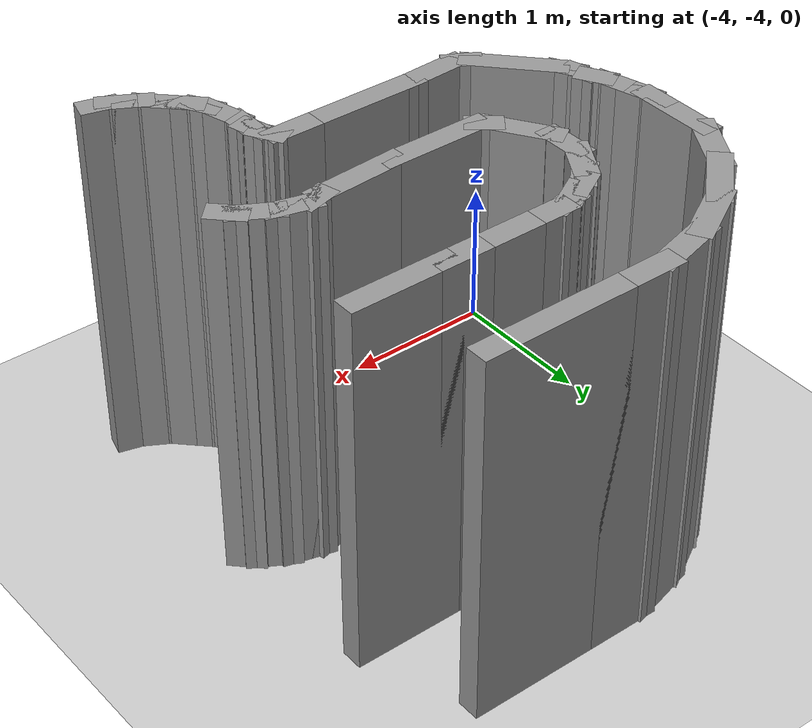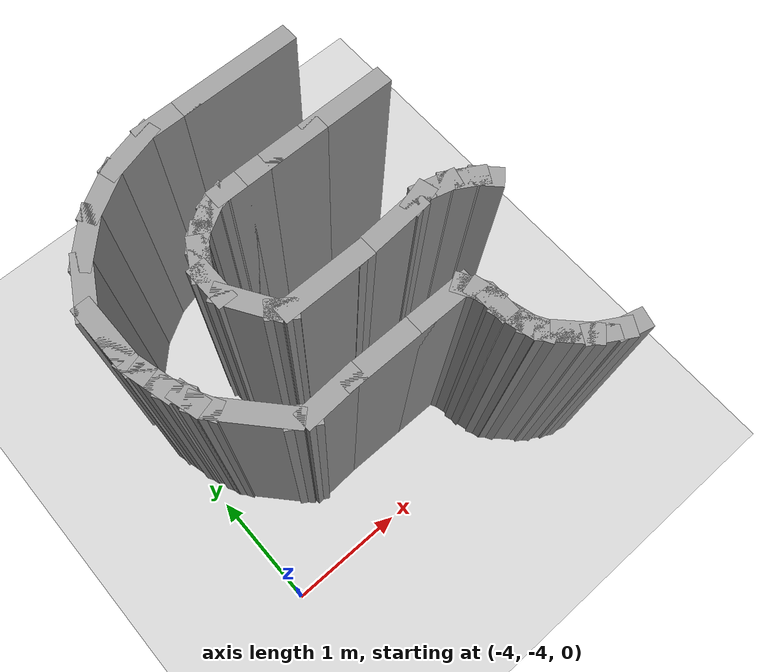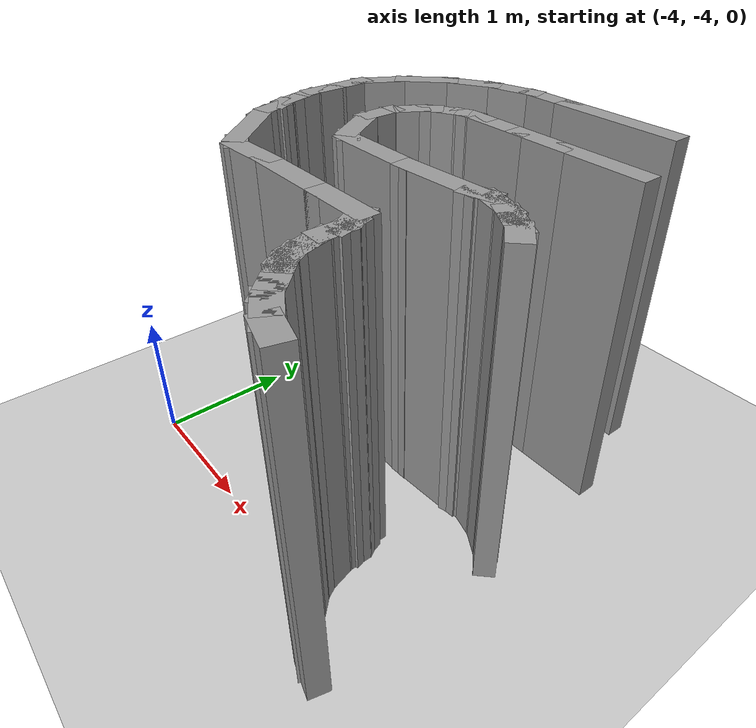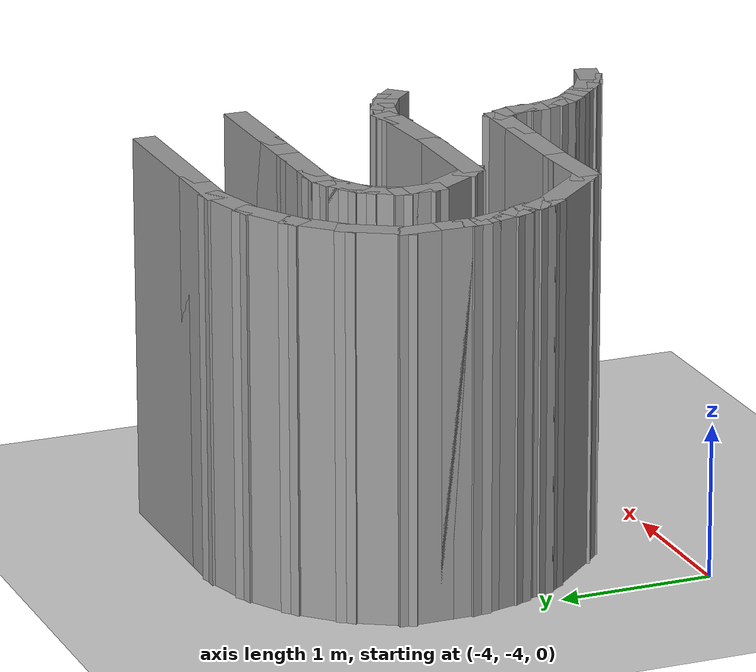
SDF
<sdf version="1.7">
 <world name="train_world">
  <include><uri>model://sun</uri></include>
  <include><uri>model://ground_plane</uri></include>
  <model name="test1">
   <pose>-1.53943 -2.21966 0 0 -0 0</pose>
   <link name="Wall_0">
    <collision name="Wall_0_Collision">
     <geometry><box><size>0.75 0.15 2.5</size></box></geometry>
     <pose>0 0 1.25 0 -0 0</pose>
    </collision>
    <visual name="Wall_0_Visual">
     <pose>0 0 1.25 0 -0 0</pose>
     <geometry><box><size>0.75 0.15 2.5</size></box></geometry>
     <material>
      <script><uri>file://media/materials/scripts/gazebo.material</uri><name>Gazebo/Grey</name></script>
      <ambient>1 1 1 1</ambient>
     </material>
     <meta><layer>0</layer></meta>
    </visual>
    <pose>-1.14057 -1.19033 0 0 -0 0</pose>
   </link>
   <link name="Wall_10">
    <collision name="Wall_10_Collision">
     <geometry><box><size>0.25 0.15 2.5</size></box></geometry>
     <pose>0 0 1.25 0 -0 0</pose>
    </collision>
    <visual name="Wall_10_Visual">
     <pose>0 0 1.25 0 -0 0</pose>
     <geometry><box><size>0.25 0.15 2.5</size></box></geometry>
     <material>
      <script><uri>file://media/materials/scripts/gazebo.material</uri><name>Gazebo/Grey</name></script>
      <ambient>1 1 1 1</ambient>
     </material>
     <meta><layer>0</layer></meta>
    </visual>
    <pose>-1.48816 0.23169 0 0 -0 0.523599</pose>
   </link>
   <link name="Wall_100">
    <collision name="Wall_100_Collision">
     <geometry><box><size>0.25 0.15 2.5</size></box></geometry>
     <pose>0 0 1.25 0 -0 0</pose>
    </collision>
    <visual name="Wall_100_Visual">
     <pose>0 0 1.25 0 -0 0</pose>
     <geometry><box><size>0.25 0.15 2.5</size></box></geometry>
     <material>
      <script><uri>file://media/materials/scripts/gazebo.material</uri><name>Gazebo/Grey</name></script>
      <ambient>1 1 1 1</ambient>
     </material>
     <meta><layer>0</layer></meta>
    </visual>
    <pose>0.120704 -2.07839 0 0 -0 -0.261799</pose>
   </link>
   <link name="Wall_11">
    <collision name="Wall_11_Collision">
     <geometry><box><size>0.25 0.15 2.5</size></box></geometry>
     <pose>0 0 1.25 0 -0 0</pose>
    </collision>
    <visual name="Wall_11_Visual">
     <pose>0 0 1.25 0 -0 0</pose>
     <geometry><box><size>0.25 0.15 2.5</size></box></geometry>
     <material>
      <script><uri>file://media/materials/scripts/gazebo.material</uri><name>Gazebo/Grey</name></script>
      <ambient>1 1 1 1</ambient>
     </material>
     <meta><layer>0</layer></meta>
    </visual>
    <pose>-1.40156 0.28169 0 0 -0 0.523599</pose>
   </link>
   <link name="Wall_12">
    <collision name="Wall_12_Collision">
     <geometry><box><size>0.25 0.15 2.5</size></box></geometry>
     <pose>0 0 1.25 0 -0 0</pose>
    </collision>
    <visual name="Wall_12_Visual">
     <pose>0 0 1.25 0 -0 0</pose>
     <geometry><box><size>0.25 0.15 2.5</size></box></geometry>
     <material>
      <script><uri>file://media/materials/scripts/gazebo.material</uri><name>Gazebo/Grey</name></script>
      <ambient>1 1 1 1</ambient>
     </material>
     <meta><layer>0</layer></meta>
    </visual>
    <pose>-1.30997 0.319631 0 0 -0 0.261799</pose>
   </link>
   <link name="Wall_126">
    <collision name="Wall_126_Collision">
     <geometry><box><size>0.5 0.15 2.5</size></box></geometry>
     <pose>0 0 1.25 0 -0 0</pose>
    </collision>
    <visual name="Wall_126_Visual">
     <pose>0 0 1.25 0 -0 0</pose>
     <geometry><box><size>0.5 0.15 2.5</size></box></geometry>
     <material>
      <script><uri>file://media/materials/scripts/gazebo.material</uri><name>Gazebo/Grey</name></script>
      <ambient>1 1 1 1</ambient>
     </material>
     <meta><layer>0</layer></meta>
    </visual>
    <pose>-2.4175 0.050557 0 0 -0 1.5708</pose>
   </link>
   <link name="Wall_127">
    <collision name="Wall_127_Collision">
     <geometry><box><size>0.5 0.15 2.5</size></box></geometry>
     <pose>0 0 1.25 0 -0 0</pose>
    </collision>
    <visual name="Wall_127_Visual">
     <pose>0 0 1.25 0 -0 0</pose>
     <geometry><box><size>0.5 0.15 2.5</size></box></geometry>
     <material>
      <script><uri>file://media/materials/scripts/gazebo.material</uri><name>Gazebo/Grey</name></script>
      <ambient>1 1 1 1</ambient>
     </material>
     <meta><layer>0</layer></meta>
    </visual>
    <pose>-2.33 0.377112 0 0 -0 1.0472</pose>
   </link>
   <link name="Wall_128">
    <collision name="Wall_128_Collision">
     <geometry><box><size>0.5 0.15 2.5</size></box></geometry>
     <pose>0 0 1.25 0 -0 0</pose>
    </collision>
    <visual name="Wall_128_Visual">
     <pose>0 0 1.25 0 -0 0</pose>
     <geometry><box><size>0.5 0.15 2.5</size></box></geometry>
     <material>
      <script><uri>file://media/materials/scripts/gazebo.material</uri><name>Gazebo/Grey</name></script>
      <ambient>1 1 1 1</ambient>
     </material>
     <meta><layer>0</layer></meta>
    </visual>
    <pose>-2.11876 0.65241 0 0 -0 0.785398</pose>
   </link>
   <link name="Wall_129">
    <collision name="Wall_129_Collision">
     <geometry><box><size>0.5 0.15 2.5</size></box></geometry>
     <pose>0 0 1.25 0 -0 0</pose>
    </collision>
    <visual name="Wall_129_Visual">
     <pose>0 0 1.25 0 -0 0</pose>
     <geometry><box><size>0.5 0.15 2.5</size></box></geometry>
     <material>
      <script><uri>file://media/materials/scripts/gazebo.material</uri><name>Gazebo/Grey</name></script>
      <ambient>1 1 1 1</ambient>
     </material>
     <meta><layer>0</layer></meta>
    </visual>
    <pose>-1.84346 0.863653 0 0 -0 0.523599</pose>
   </link>
   <link name="Wall_13">
    <collision name="Wall_13_Collision">
     <geometry><box><size>0.25 0.15 2.5</size></box></geometry>
     <pose>0 0 1.25 0 -0 0</pose>
    </collision>
    <visual name="Wall_13_Visual">
     <pose>0 0 1.25 0 -0 0</pose>
     <geometry><box><size>0.25 0.15 2.5</size></box></geometry>
     <material>
      <script><uri>file://media/materials/scripts/gazebo.material</uri><name>Gazebo/Grey</name></script>
      <ambient>1 1 1 1</ambient>
     </material>
     <meta><layer>0</layer></meta>
    </visual>
    <pose>-1.21167 0.332572 0 0 -0 0</pose>
   </link>
   <link name="Wall_130">
    <collision name="Wall_130_Collision">
     <geometry><box><size>0.5 0.15 2.5</size></box></geometry>
     <pose>0 0 1.25 0 -0 0</pose>
    </collision>
    <visual name="Wall_130_Visual">
     <pose>0 0 1.25 0 -0 0</pose>
     <geometry><box><size>0.5 0.15 2.5</size></box></geometry>
     <material>
      <script><uri>file://media/materials/scripts/gazebo.material</uri><name>Gazebo/Grey</name></script>
      <ambient>1 1 1 1</ambient>
     </material>
     <meta><layer>0</layer></meta>
    </visual>
    <pose>-1.52287 0.996447 0 0 -0 0.261799</pose>
   </link>
   <link name="Wall_131">
    <collision name="Wall_131_Collision">
     <geometry><box><size>0.5 0.15 2.5</size></box></geometry>
     <pose>0 0 1.25 0 -0 0</pose>
    </collision>
    <visual name="Wall_131_Visual">
     <pose>0 0 1.25 0 -0 0</pose>
     <geometry><box><size>0.5 0.15 2.5</size></box></geometry>
     <material>
      <script><uri>file://media/materials/scripts/gazebo.material</uri><name>Gazebo/Grey</name></script>
      <ambient>1 1 1 1</ambient>
     </material>
     <meta><layer>0</layer></meta>
    </visual>
    <pose>-1.17883 1.04174 0 0 -0 0</pose>
   </link>
   <link name="Wall_132">
    <collision name="Wall_132_Collision">
     <geometry><box><size>1 0.15 2.5</size></box></geometry>
     <pose>0 0 1.25 0 -0 0</pose>
    </collision>
    <visual name="Wall_132_Visual">
     <pose>0 0 1.25 0 -0 0</pose>
     <geometry><box><size>1 0.15 2.5</size></box></geometry>
     <material>
      <script><uri>file://media/materials/scripts/gazebo.material</uri><name>Gazebo/Grey</name></script>
      <ambient>1 1 1 1</ambient>
     </material>
     <meta><layer>0</layer></meta>
    </visual>
    <pose>-0.578833 1.04174 0 0 -0 0</pose>
   </link>
   <link name="Wall_14">
    <collision name="Wall_14_Collision">
     <geometry><box><size>0.5 0.15 2.5</size></box></geometry>
     <pose>0 0 1.25 0 -0 0</pose>
    </collision>
    <visual name="Wall_14_Visual">
     <pose>0 0 1.25 0 -0 0</pose>
     <geometry><box><size>0.5 0.15 2.5</size></box></geometry>
     <material>
      <script><uri>file://media/materials/scripts/gazebo.material</uri><name>Gazebo/Grey</name></script>
      <ambient>1 1 1 1</ambient>
     </material>
     <meta><layer>0</layer></meta>
    </visual>
    <pose>-0.986669 0.332572 0 0 -0 0</pose>
   </link>
   <link name="Wall_15">
    <collision name="Wall_15_Collision">
     <geometry><box><size>0.5 0.15 2.5</size></box></geometry>
     <pose>0 0 1.25 0 -0 0</pose>
    </collision>
    <visual name="Wall_15_Visual">
     <pose>0 0 1.25 0 -0 0</pose>
     <geometry><box><size>0.5 0.15 2.5</size></box></geometry>
     <material>
      <script><uri>file://media/materials/scripts/gazebo.material</uri><name>Gazebo/Grey</name></script>
      <ambient>1 1 1 1</ambient>
     </material>
     <meta><layer>0</layer></meta>
    </visual>
    <pose>-0.636669 0.332572 0 0 -0 0</pose>
   </link>
   <link name="Wall_16">
    <collision name="Wall_16_Collision">
     <geometry><box><size>0.73 0.15 2.5</size></box></geometry>
     <pose>0 0 1.25 0 -0 0</pose>
    </collision>
    <visual name="Wall_16_Visual">
     <pose>0 0 1.25 0 -0 0</pose>
     <geometry><box><size>0.73 0.15 2.5</size></box></geometry>
     <material>
      <script><uri>file://media/materials/scripts/gazebo.material</uri><name>Gazebo/Grey</name></script>
      <ambient>1 1 1 1</ambient>
     </material>
     <meta><layer>0</layer></meta>
    </visual>
    <pose>-0.171669 0.332572 0 0 -0 0</pose>
   </link>
   <link name="Wall_2">
    <collision name="Wall_2_Collision">
     <geometry><box><size>0.75 0.15 2.5</size></box></geometry>
     <pose>0 0 1.25 0 -0 0</pose>
    </collision>
    <visual name="Wall_2_Visual">
     <pose>0 0 1.25 0 -0 0</pose>
     <geometry><box><size>0.75 0.15 2.5</size></box></geometry>
     <material>
      <script><uri>file://media/materials/scripts/gazebo.material</uri><name>Gazebo/Grey</name></script>
      <ambient>1 1 1 1</ambient>
     </material>
     <meta><layer>0</layer></meta>
    </visual>
    <pose>-1.14057 -0.590335 0 0 -0 3.14159</pose>
   </link>
   <link name="Wall_3">
    <collision name="Wall_3_Collision">
     <geometry><box><size>0.233282 0.15 2.5</size></box></geometry>
     <pose>0 0 1.25 0 -0 0</pose>
    </collision>
    <visual name="Wall_3_Visual">
     <pose>0 0 1.25 0 -0 0</pose>
     <geometry><box><size>0.233282 0.15 2.5</size></box></geometry>
     <material>
      <script><uri>file://media/materials/scripts/gazebo.material</uri><name>Gazebo/Grey</name></script>
      <ambient>1 1 1 1</ambient>
     </material>
     <meta><layer>0</layer></meta>
    </visual>
    <pose>-1.47388 -0.565335 0 0 -0 2.49763</pose>
   </link>
   <link name="Wall_4">
    <collision name="Wall_4_Collision">
     <geometry><box><size>0.510416 0.15 2.5</size></box></geometry>
     <pose>0 0 1.25 0 -0 0</pose>
    </collision>
    <visual name="Wall_4_Visual">
     <pose>0 0 1.25 0 -0 0</pose>
     <geometry><box><size>0.510416 0.15 2.5</size></box></geometry>
     <material>
      <script><uri>file://media/materials/scripts/gazebo.material</uri><name>Gazebo/Grey</name></script>
      <ambient>1 1 1 1</ambient>
     </material>
     <meta><layer>0</layer></meta>
    </visual>
    <pose>-1.60468 -0.38878 0 0 -0 2.14247</pose>
   </link>
   <link name="Wall_45">
    <collision name="Wall_45_Collision">
     <geometry><box><size>0.25 0.15 2.5</size></box></geometry>
     <pose>0 0 1.25 0 -0 0</pose>
    </collision>
    <visual name="Wall_45_Visual">
     <pose>0 0 1.25 0 -0 0</pose>
     <geometry><box><size>0.25 0.15 2.5</size></box></geometry>
     <material>
      <script><uri>file://media/materials/scripts/gazebo.material</uri><name>Gazebo/Grey</name></script>
      <ambient>1 1 1 1</ambient>
     </material>
     <meta><layer>0</layer></meta>
    </visual>
    <pose>0.166593 -0.71885 0 0 -0 2.35619</pose>
   </link>
   <link name="Wall_46">
    <collision name="Wall_46_Collision">
     <geometry><box><size>0.25 0.15 2.5</size></box></geometry>
     <pose>0 0 1.25 0 -0 0</pose>
    </collision>
    <visual name="Wall_46_Visual">
     <pose>0 0 1.25 0 -0 0</pose>
     <geometry><box><size>0.25 0.15 2.5</size></box></geometry>
     <material>
      <script><uri>file://media/materials/scripts/gazebo.material</uri><name>Gazebo/Grey</name></script>
      <ambient>1 1 1 1</ambient>
     </material>
     <meta><layer>0</layer></meta>
    </visual>
    <pose>0.087937 -0.658495 0 0 -0 2.61799</pose>
   </link>
   <link name="Wall_47">
    <collision name="Wall_47_Collision">
     <geometry><box><size>0.25 0.15 2.5</size></box></geometry>
     <pose>0 0 1.25 0 -0 0</pose>
    </collision>
    <visual name="Wall_47_Visual">
     <pose>0 0 1.25 0 -0 0</pose>
     <geometry><box><size>0.25 0.15 2.5</size></box></geometry>
     <material>
      <script><uri>file://media/materials/scripts/gazebo.material</uri><name>Gazebo/Grey</name></script>
      <ambient>1 1 1 1</ambient>
     </material>
     <meta><layer>0</layer></meta>
    </visual>
    <pose>0.001334 -0.608495 0 0 -0 2.61799</pose>
   </link>
   <link name="Wall_48">
    <collision name="Wall_48_Collision">
     <geometry><box><size>0.25 0.15 2.5</size></box></geometry>
     <pose>0 0 1.25 0 -0 0</pose>
    </collision>
    <visual name="Wall_48_Visual">
     <pose>0 0 1.25 0 -0 0</pose>
     <geometry><box><size>0.25 0.15 2.5</size></box></geometry>
     <material>
      <script><uri>file://media/materials/scripts/gazebo.material</uri><name>Gazebo/Grey</name></script>
      <ambient>1 1 1 1</ambient>
     </material>
     <meta><layer>0</layer></meta>
    </visual>
    <pose>-0.090263 -0.570554 0 0 -0 2.87979</pose>
   </link>
   <link name="Wall_49">
    <collision name="Wall_49_Collision">
     <geometry><box><size>0.25 0.15 2.5</size></box></geometry>
     <pose>0 0 1.25 0 -0 0</pose>
    </collision>
    <visual name="Wall_49_Visual">
     <pose>0 0 1.25 0 -0 0</pose>
     <geometry><box><size>0.25 0.15 2.5</size></box></geometry>
     <material>
      <script><uri>file://media/materials/scripts/gazebo.material</uri><name>Gazebo/Grey</name></script>
      <ambient>1 1 1 1</ambient>
     </material>
     <meta><layer>0</layer></meta>
    </visual>
    <pose>-0.186856 -0.544672 0 0 -0 2.87979</pose>
   </link>
   <link name="Wall_5">
    <collision name="Wall_5_Collision">
     <geometry><box><size>0.25 0.15 2.5</size></box></geometry>
     <pose>0 0 1.25 0 -0 0</pose>
    </collision>
    <visual name="Wall_5_Visual">
     <pose>0 0 1.25 0 -0 0</pose>
     <geometry><box><size>0.25 0.15 2.5</size></box></geometry>
     <material>
      <script><uri>file://media/materials/scripts/gazebo.material</uri><name>Gazebo/Grey</name></script>
      <ambient>1 1 1 1</ambient>
     </material>
     <meta><layer>0</layer></meta>
    </visual>
    <pose>-1.70218 -0.187226 0 0 -0 1.5708</pose>
   </link>
   <link name="Wall_50">
    <collision name="Wall_50_Collision">
     <geometry><box><size>0.25 0.15 2.5</size></box></geometry>
     <pose>0 0 1.25 0 -0 0</pose>
    </collision>
    <visual name="Wall_50_Visual">
     <pose>0 0 1.25 0 -0 0</pose>
     <geometry><box><size>0.25 0.15 2.5</size></box></geometry>
     <material>
      <script><uri>file://media/materials/scripts/gazebo.material</uri><name>Gazebo/Grey</name></script>
      <ambient>1 1 1 1</ambient>
     </material>
     <meta><layer>0</layer></meta>
    </visual>
    <pose>-0.283449 -0.544672 0 0 -0 -2.87979</pose>
   </link>
   <link name="Wall_51">
    <collision name="Wall_51_Collision">
     <geometry><box><size>0.659881 0.15 2.5</size></box></geometry>
     <pose>0 0 1.25 0 -0 0</pose>
    </collision>
    <visual name="Wall_51_Visual">
     <pose>0 0 1.25 0 -0 0</pose>
     <geometry><box><size>0.659881 0.15 2.5</size></box></geometry>
     <material>
      <script><uri>file://media/materials/scripts/gazebo.material</uri><name>Gazebo/Grey</name></script>
      <ambient>1 1 1 1</ambient>
     </material>
     <meta><layer>0</layer></meta>
    </visual>
    <pose>-0.58616 -0.573974 0 0 -0 -3.07737</pose>
   </link>
   <link name="Wall_6">
    <collision name="Wall_6_Collision">
     <geometry><box><size>0.25 0.15 2.5</size></box></geometry>
     <pose>0 0 1.25 0 -0 0</pose>
    </collision>
    <visual name="Wall_6_Visual">
     <pose>0 0 1.25 0 -0 0</pose>
     <geometry><box><size>0.25 0.15 2.5</size></box></geometry>
     <material>
      <script><uri>file://media/materials/scripts/gazebo.material</uri><name>Gazebo/Grey</name></script>
      <ambient>1 1 1 1</ambient>
     </material>
     <meta><layer>0</layer></meta>
    </visual>
    <pose>-1.70218 -0.087226 0 0 -0 1.5708</pose>
   </link>
   <link name="Wall_61">
    <collision name="Wall_61_Collision">
     <geometry><box><size>0.23 0.15 2.5</size></box></geometry>
     <pose>0 0 1.25 0 -0 0</pose>
    </collision>
    <visual name="Wall_61_Visual">
     <pose>0 0 1.25 0 -0 0</pose>
     <geometry><box><size>0.23 0.15 2.5</size></box></geometry>
     <material>
      <script><uri>file://media/materials/scripts/gazebo.material</uri><name>Gazebo/Grey</name></script>
      <ambient>1 1 1 1</ambient>
     </material>
     <meta><layer>0</layer></meta>
    </visual>
    <pose>-2.4175 -0.084443 0 0 -0 -1.5708</pose>
   </link>
   <link name="Wall_62">
    <collision name="Wall_62_Collision">
     <geometry><box><size>0.25 0.15 2.5</size></box></geometry>
     <pose>0 0 1.25 0 -0 0</pose>
    </collision>
    <visual name="Wall_62_Visual">
     <pose>0 0 1.25 0 -0 0</pose>
     <geometry><box><size>0.25 0.15 2.5</size></box></geometry>
     <material>
      <script><uri>file://media/materials/scripts/gazebo.material</uri><name>Gazebo/Grey</name></script>
      <ambient>1 1 1 1</ambient>
     </material>
     <meta><layer>0</layer></meta>
    </visual>
    <pose>-2.4175 -0.174443 0 0 -0 -1.5708</pose>
   </link>
   <link name="Wall_63">
    <collision name="Wall_63_Collision">
     <geometry><box><size>0.25 0.15 2.5</size></box></geometry>
     <pose>0 0 1.25 0 -0 0</pose>
    </collision>
    <visual name="Wall_63_Visual">
     <pose>0 0 1.25 0 -0 0</pose>
     <geometry><box><size>0.25 0.15 2.5</size></box></geometry>
     <material>
      <script><uri>file://media/materials/scripts/gazebo.material</uri><name>Gazebo/Grey</name></script>
      <ambient>1 1 1 1</ambient>
     </material>
     <meta><layer>0</layer></meta>
    </visual>
    <pose>-2.40456 -0.272739 0 0 -0 -1.309</pose>
   </link>
   <link name="Wall_64">
    <collision name="Wall_64_Collision">
     <geometry><box><size>0.25 0.15 2.5</size></box></geometry>
     <pose>0 0 1.25 0 -0 0</pose>
    </collision>
    <visual name="Wall_64_Visual">
     <pose>0 0 1.25 0 -0 0</pose>
     <geometry><box><size>0.25 0.15 2.5</size></box></geometry>
     <material>
      <script><uri>file://media/materials/scripts/gazebo.material</uri><name>Gazebo/Grey</name></script>
      <ambient>1 1 1 1</ambient>
     </material>
     <meta><layer>0</layer></meta>
    </visual>
    <pose>-2.37868 -0.369332 0 0 -0 -1.309</pose>
   </link>
   <link name="Wall_65">
    <collision name="Wall_65_Collision">
     <geometry><box><size>0.25 0.15 2.5</size></box></geometry>
     <pose>0 0 1.25 0 -0 0</pose>
    </collision>
    <visual name="Wall_65_Visual">
     <pose>0 0 1.25 0 -0 0</pose>
     <geometry><box><size>0.25 0.15 2.5</size></box></geometry>
     <material>
      <script><uri>file://media/materials/scripts/gazebo.material</uri><name>Gazebo/Grey</name></script>
      <ambient>1 1 1 1</ambient>
     </material>
     <meta><layer>0</layer></meta>
    </visual>
    <pose>-2.3528 -0.465924 0 0 -0 -1.309</pose>
   </link>
   <link name="Wall_66">
    <collision name="Wall_66_Collision">
     <geometry><box><size>0.25 0.15 2.5</size></box></geometry>
     <pose>0 0 1.25 0 -0 0</pose>
    </collision>
    <visual name="Wall_66_Visual">
     <pose>0 0 1.25 0 -0 0</pose>
     <geometry><box><size>0.25 0.15 2.5</size></box></geometry>
     <material>
      <script><uri>file://media/materials/scripts/gazebo.material</uri><name>Gazebo/Grey</name></script>
      <ambient>1 1 1 1</ambient>
     </material>
     <meta><layer>0</layer></meta>
    </visual>
    <pose>-2.31486 -0.557522 0 0 -0 -1.0472</pose>
   </link>
   <link name="Wall_67">
    <collision name="Wall_67_Collision">
     <geometry><box><size>0.25 0.15 2.5</size></box></geometry>
     <pose>0 0 1.25 0 -0 0</pose>
    </collision>
    <visual name="Wall_67_Visual">
     <pose>0 0 1.25 0 -0 0</pose>
     <geometry><box><size>0.25 0.15 2.5</size></box></geometry>
     <material>
      <script><uri>file://media/materials/scripts/gazebo.material</uri><name>Gazebo/Grey</name></script>
      <ambient>1 1 1 1</ambient>
     </material>
     <meta><layer>0</layer></meta>
    </visual>
    <pose>-2.27692 -0.649119 0 0 -0 -1.309</pose>
   </link>
   <link name="Wall_68">
    <collision name="Wall_68_Collision">
     <geometry><box><size>0.25 0.15 2.5</size></box></geometry>
     <pose>0 0 1.25 0 -0 0</pose>
    </collision>
    <visual name="Wall_68_Visual">
     <pose>0 0 1.25 0 -0 0</pose>
     <geometry><box><size>0.25 0.15 2.5</size></box></geometry>
     <material>
      <script><uri>file://media/materials/scripts/gazebo.material</uri><name>Gazebo/Grey</name></script>
      <ambient>1 1 1 1</ambient>
     </material>
     <meta><layer>0</layer></meta>
    </visual>
    <pose>-2.23898 -0.740717 0 0 -0 -1.0472</pose>
   </link>
   <link name="Wall_7">
    <collision name="Wall_7_Collision">
     <geometry><box><size>0.25 0.15 2.5</size></box></geometry>
     <pose>0 0 1.25 0 -0 0</pose>
    </collision>
    <visual name="Wall_7_Visual">
     <pose>0 0 1.25 0 -0 0</pose>
     <geometry><box><size>0.25 0.15 2.5</size></box></geometry>
     <material>
      <script><uri>file://media/materials/scripts/gazebo.material</uri><name>Gazebo/Grey</name></script>
      <ambient>1 1 1 1</ambient>
     </material>
     <meta><layer>0</layer></meta>
    </visual>
    <pose>-1.67718 0.006075 0 0 -0 1.0472</pose>
   </link>
   <link name="Wall_76">
    <collision name="Wall_76_Collision">
     <geometry><box><size>0.490641 0.15 2.5</size></box></geometry>
     <pose>0 0 1.25 0 -0 0</pose>
    </collision>
    <visual name="Wall_76_Visual">
     <pose>0 0 1.25 0 -0 0</pose>
     <geometry><box><size>0.490641 0.15 2.5</size></box></geometry>
     <material>
      <script><uri>file://media/materials/scripts/gazebo.material</uri><name>Gazebo/Grey</name></script>
      <ambient>1 1 1 1</ambient>
     </material>
     <meta><layer>0</layer></meta>
    </visual>
    <pose>-1.61065 -1.19942 0 0 -0 0.053395</pose>
   </link>
   <link name="Wall_8">
    <collision name="Wall_8_Collision">
     <geometry><box><size>0.25 0.15 2.5</size></box></geometry>
     <pose>0 0 1.25 0 -0 0</pose>
    </collision>
    <visual name="Wall_8_Visual">
     <pose>0 0 1.25 0 -0 0</pose>
     <geometry><box><size>0.25 0.15 2.5</size></box></geometry>
     <material>
      <script><uri>file://media/materials/scripts/gazebo.material</uri><name>Gazebo/Grey</name></script>
      <ambient>1 1 1 1</ambient>
     </material>
     <meta><layer>0</layer></meta>
    </visual>
    <pose>-1.62718 0.092678 0 0 -0 1.0472</pose>
   </link>
   <link name="Wall_80">
    <collision name="Wall_80_Collision">
     <geometry><box><size>0.25 0.15 2.5</size></box></geometry>
     <pose>0 0 1.25 0 -0 0</pose>
    </collision>
    <visual name="Wall_80_Visual">
     <pose>0 0 1.25 0 -0 0</pose>
     <geometry><box><size>0.25 0.15 2.5</size></box></geometry>
     <material>
      <script><uri>file://media/materials/scripts/gazebo.material</uri><name>Gazebo/Grey</name></script>
      <ambient>1 1 1 1</ambient>
     </material>
     <meta><layer>0</layer></meta>
    </visual>
    <pose>-1.82403 -1.18352 0 0 -0 2.61799</pose>
   </link>
   <link name="Wall_81">
    <collision name="Wall_81_Collision">
     <geometry><box><size>0.660302 0.15 2.5</size></box></geometry>
     <pose>0 0 1.25 0 -0 0</pose>
    </collision>
    <visual name="Wall_81_Visual">
     <pose>0 0 1.25 0 -0 0</pose>
     <geometry><box><size>0.660302 0.15 2.5</size></box></geometry>
     <material>
      <script><uri>file://media/materials/scripts/gazebo.material</uri><name>Gazebo/Grey</name></script>
      <ambient>1 1 1 1</ambient>
     </material>
     <meta><layer>0</layer></meta>
    </visual>
    <pose>-2.04065 -0.971267 0 0 -0 2.31759</pose>
   </link>
   <link name="Wall_88">
    <collision name="Wall_88_Collision">
     <geometry><box><size>0.5 0.15 2.5</size></box></geometry>
     <pose>0 0 1.25 0 -0 0</pose>
    </collision>
    <visual name="Wall_88_Visual">
     <pose>0 0 1.25 0 -0 0</pose>
     <geometry><box><size>0.5 0.15 2.5</size></box></geometry>
     <material>
      <script><uri>file://media/materials/scripts/gazebo.material</uri><name>Gazebo/Grey</name></script>
      <ambient>1 1 1 1</ambient>
     </material>
     <meta><layer>0</layer></meta>
    </visual>
    <pose>-0.665575 -1.19033 0 0 -0 0</pose>
   </link>
   <link name="Wall_89">
    <collision name="Wall_89_Collision">
     <geometry><box><size>0.25 0.15 2.5</size></box></geometry>
     <pose>0 0 1.25 0 -0 0</pose>
    </collision>
    <visual name="Wall_89_Visual">
     <pose>0 0 1.25 0 -0 0</pose>
     <geometry><box><size>0.25 0.15 2.5</size></box></geometry>
     <material>
      <script><uri>file://media/materials/scripts/gazebo.material</uri><name>Gazebo/Grey</name></script>
      <ambient>1 1 1 1</ambient>
     </material>
     <meta><layer>0</layer></meta>
    </visual>
    <pose>-0.465575 -1.23364 0 0 -0 -1.0472</pose>
   </link>
   <link name="Wall_9">
    <collision name="Wall_9_Collision">
     <geometry><box><size>0.25 0.15 2.5</size></box></geometry>
     <pose>0 0 1.25 0 -0 0</pose>
    </collision>
    <visual name="Wall_9_Visual">
     <pose>0 0 1.25 0 -0 0</pose>
     <geometry><box><size>0.25 0.15 2.5</size></box></geometry>
     <material>
      <script><uri>file://media/materials/scripts/gazebo.material</uri><name>Gazebo/Grey</name></script>
      <ambient>1 1 1 1</ambient>
     </material>
     <meta><layer>0</layer></meta>
    </visual>
    <pose>-1.56682 0.171335 0 0 -0 0.785398</pose>
   </link>
   <link name="Wall_90">
    <collision name="Wall_90_Collision">
     <geometry><box><size>0.25 0.15 2.5</size></box></geometry>
     <pose>0 0 1.25 0 -0 0</pose>
    </collision>
    <visual name="Wall_90_Visual">
     <pose>0 0 1.25 0 -0 0</pose>
     <geometry><box><size>0.25 0.15 2.5</size></box></geometry>
     <material>
      <script><uri>file://media/materials/scripts/gazebo.material</uri><name>Gazebo/Grey</name></script>
      <ambient>1 1 1 1</ambient>
     </material>
     <meta><layer>0</layer></meta>
    </visual>
    <pose>-0.427634 -1.32523 0 0 -0 -1.309</pose>
   </link>
   <link name="Wall_91">
    <collision name="Wall_91_Collision">
     <geometry><box><size>0.25 0.15 2.5</size></box></geometry>
     <pose>0 0 1.25 0 -0 0</pose>
    </collision>
    <visual name="Wall_91_Visual">
     <pose>0 0 1.25 0 -0 0</pose>
     <geometry><box><size>0.25 0.15 2.5</size></box></geometry>
     <material>
      <script><uri>file://media/materials/scripts/gazebo.material</uri><name>Gazebo/Grey</name></script>
      <ambient>1 1 1 1</ambient>
     </material>
     <meta><layer>0</layer></meta>
    </visual>
    <pose>-0.414693 -1.42353 0 0 -0 -1.5708</pose>
   </link>
   <link name="Wall_92">
    <collision name="Wall_92_Collision">
     <geometry><box><size>0.25 0.15 2.5</size></box></geometry>
     <pose>0 0 1.25 0 -0 0</pose>
    </collision>
    <visual name="Wall_92_Visual">
     <pose>0 0 1.25 0 -0 0</pose>
     <geometry><box><size>0.25 0.15 2.5</size></box></geometry>
     <material>
      <script><uri>file://media/materials/scripts/gazebo.material</uri><name>Gazebo/Grey</name></script>
      <ambient>1 1 1 1</ambient>
     </material>
     <meta><layer>0</layer></meta>
    </visual>
    <pose>-0.401752 -1.52183 0 0 -0 -1.309</pose>
   </link>
   <link name="Wall_93">
    <collision name="Wall_93_Collision">
     <geometry><box><size>0.25 0.15 2.5</size></box></geometry>
     <pose>0 0 1.25 0 -0 0</pose>
    </collision>
    <visual name="Wall_93_Visual">
     <pose>0 0 1.25 0 -0 0</pose>
     <geometry><box><size>0.25 0.15 2.5</size></box></geometry>
     <material>
      <script><uri>file://media/materials/scripts/gazebo.material</uri><name>Gazebo/Grey</name></script>
      <ambient>1 1 1 1</ambient>
     </material>
     <meta><layer>0</layer></meta>
    </visual>
    <pose>-0.37587 -1.61842 0 0 -0 -1.309</pose>
   </link>
   <link name="Wall_94">
    <collision name="Wall_94_Collision">
     <geometry><box><size>0.25 0.15 2.5</size></box></geometry>
     <pose>0 0 1.25 0 -0 0</pose>
    </collision>
    <visual name="Wall_94_Visual">
     <pose>0 0 1.25 0 -0 0</pose>
     <geometry><box><size>0.25 0.15 2.5</size></box></geometry>
     <material>
      <script><uri>file://media/materials/scripts/gazebo.material</uri><name>Gazebo/Grey</name></script>
      <ambient>1 1 1 1</ambient>
     </material>
     <meta><layer>0</layer></meta>
    </visual>
    <pose>-0.337929 -1.71002 0 0 -0 -1.0472</pose>
   </link>
   <link name="Wall_95">
    <collision name="Wall_95_Collision">
     <geometry><box><size>0.25 0.15 2.5</size></box></geometry>
     <pose>0 0 1.25 0 -0 0</pose>
    </collision>
    <visual name="Wall_95_Visual">
     <pose>0 0 1.25 0 -0 0</pose>
     <geometry><box><size>0.25 0.15 2.5</size></box></geometry>
     <material>
      <script><uri>file://media/materials/scripts/gazebo.material</uri><name>Gazebo/Grey</name></script>
      <ambient>1 1 1 1</ambient>
     </material>
     <meta><layer>0</layer></meta>
    </visual>
    <pose>-0.277574 -1.78867 0 0 -0 -0.785398</pose>
   </link>
   <link name="Wall_96">
    <collision name="Wall_96_Collision">
     <geometry><box><size>0.25 0.15 2.5</size></box></geometry>
     <pose>0 0 1.25 0 -0 0</pose>
    </collision>
    <visual name="Wall_96_Visual">
     <pose>0 0 1.25 0 -0 0</pose>
     <geometry><box><size>0.25 0.15 2.5</size></box></geometry>
     <material>
      <script><uri>file://media/materials/scripts/gazebo.material</uri><name>Gazebo/Grey</name></script>
      <ambient>1 1 1 1</ambient>
     </material>
     <meta><layer>0</layer></meta>
    </visual>
    <pose>-0.206863 -1.85938 0 0 -0 -0.785398</pose>
   </link>
   <link name="Wall_97">
    <collision name="Wall_97_Collision">
     <geometry><box><size>0.25 0.15 2.5</size></box></geometry>
     <pose>0 0 1.25 0 -0 0</pose>
    </collision>
    <visual name="Wall_97_Visual">
     <pose>0 0 1.25 0 -0 0</pose>
     <geometry><box><size>0.25 0.15 2.5</size></box></geometry>
     <material>
      <script><uri>file://media/materials/scripts/gazebo.material</uri><name>Gazebo/Grey</name></script>
      <ambient>1 1 1 1</ambient>
     </material>
     <meta><layer>0</layer></meta>
    </visual>
    <pose>-0.136152 -1.93009 0 0 -0 -0.785398</pose>
   </link>
   <link name="Wall_98">
    <collision name="Wall_98_Collision">
     <geometry><box><size>0.25 0.15 2.5</size></box></geometry>
     <pose>0 0 1.25 0 -0 0</pose>
    </collision>
    <visual name="Wall_98_Visual">
     <pose>0 0 1.25 0 -0 0</pose>
     <geometry><box><size>0.25 0.15 2.5</size></box></geometry>
     <material>
      <script><uri>file://media/materials/scripts/gazebo.material</uri><name>Gazebo/Grey</name></script>
      <ambient>1 1 1 1</ambient>
     </material>
     <meta><layer>0</layer></meta>
    </visual>
    <pose>-0.057496 -1.99045 0 0 -0 -0.523599</pose>
   </link>
   <link name="Wall_99">
    <collision name="Wall_99_Collision">
     <geometry><box><size>0.25 0.15 2.5</size></box></geometry>
     <pose>0 0 1.25 0 -0 0</pose>
    </collision>
    <visual name="Wall_99_Visual">
     <pose>0 0 1.25 0 -0 0</pose>
     <geometry><box><size>0.25 0.15 2.5</size></box></geometry>
     <material>
      <script><uri>file://media/materials/scripts/gazebo.material</uri><name>Gazebo/Grey</name></script>
      <ambient>1 1 1 1</ambient>
     </material>
     <meta><layer>0</layer></meta>
    </visual>
    <pose>0.029107 -2.04045 0 0 -0 -0.523599</pose>
   </link>
   <static>1</static>
  </model>
 </world>
</sdf>
